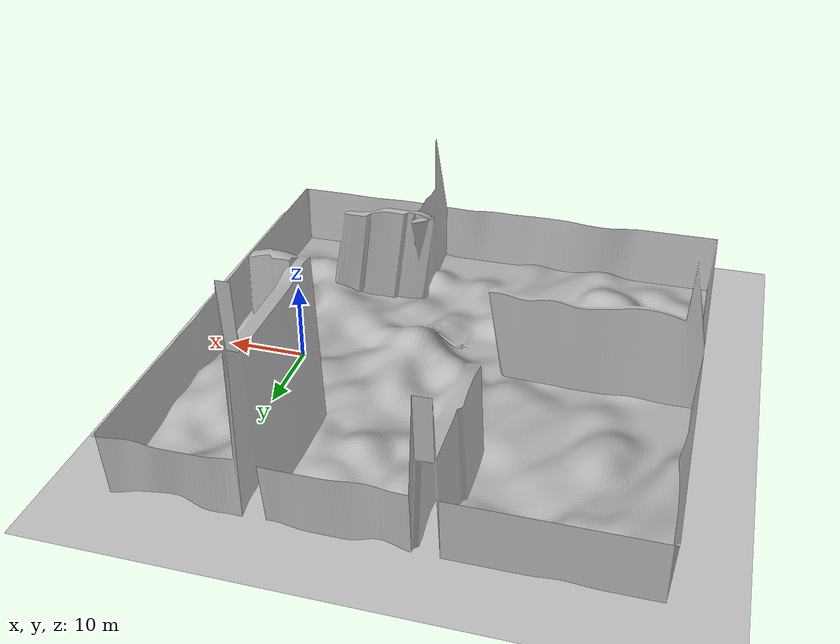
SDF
<sdf version="1.7">
 <world name="default">
  <light name="sun" type="directional">
   <pose>0 0 10 0 -0 0</pose>
   <diffuse>0.8 0.8 0.8 1</diffuse>
   <specular>0.2 0.2 0.2 1</specular>
   <attenuation>
    <range>1000</range>
    <constant>0.9</constant>
    <linear>0.01</linear>
    <quadratic>0.001</quadratic>
   </attenuation>
   <direction>-0.5 0.1 -0.9</direction>
   <spot><inner_angle>0</inner_angle><outer_angle>0</outer_angle><falloff>0</falloff></spot>
  </light>
  <model name="ground_plane">
   <static>1</static>
   <link name="link">
    <collision name="collision">
     <laser_retro>100</laser_retro>
     <geometry><plane><normal>0 0 1</normal><size>100 100</size></plane></geometry>
     <surface><friction><ode><mu>100</mu><mu2>50</mu2></ode></friction></surface>
    </collision>
    <visual name="visual">
     <laser_retro>100</laser_retro>
     <cast_shadows>0</cast_shadows>
     <geometry><plane><normal>0 0 1</normal><size>100 100</size></plane></geometry>
     <material>
      <script><uri>file://media/materials/scripts/gazebo.material</uri><name>Gazebo/Grey</name></script>
     </material>
    </visual>
   </link>
  </model>
  <gravity>0 0 -9.8</gravity>
  <magnetic_field>6e-06 2.3e-05 -4.2e-05</magnetic_field>
  <atmosphere type="adiabatic"/>
  <physics type="ode">
   <max_step_size>0.001</max_step_size>
   <real_time_factor>1</real_time_factor>
   <real_time_update_rate>1000</real_time_update_rate>
  </physics>
  <scene><ambient>0.4 0.4 0.4 1</ambient><background>0.7 0.7 0.7 1</background><shadows>1</shadows></scene>
  <audio><device>default</device></audio>
  <spherical_coordinates>
   <surface_model>EARTH_WGS84</surface_model>
   <latitude_deg>0</latitude_deg>
   <longitude_deg>0</longitude_deg>
   <elevation>0</elevation>
   <heading_deg>0</heading_deg>
  </spherical_coordinates>
  <model name="terrain_1">
   <pose>-19.427 0.705065 0.528682 0 -0 0</pose>
   <static>1</static>
   <link name="body">
    <visual name="visual">
     <geometry><mesh><uri>/home/rhobtor/.gazebo/models/test_1world/media/test_world1.dae</uri></mesh></geometry>
     <material>
      <script>
       <uri>/home/rhobtor/.gazebo/models/test_1world/media/scripts</uri>
       <uri>/home/rhobtor/.gazebo/models/test_1world/media/Textures</uri>
       <name>RepeatedGrass/Diffuse</name>
      </script>
     </material>
    </visual>
    <collision name="collision">
     <geometry><mesh><uri>/home/rhobtor/.gazebo/models/test_1world/media/test_world1.dae</uri></mesh></geometry>
    </collision>
   </link>
  </model>
 </world>
</sdf>
